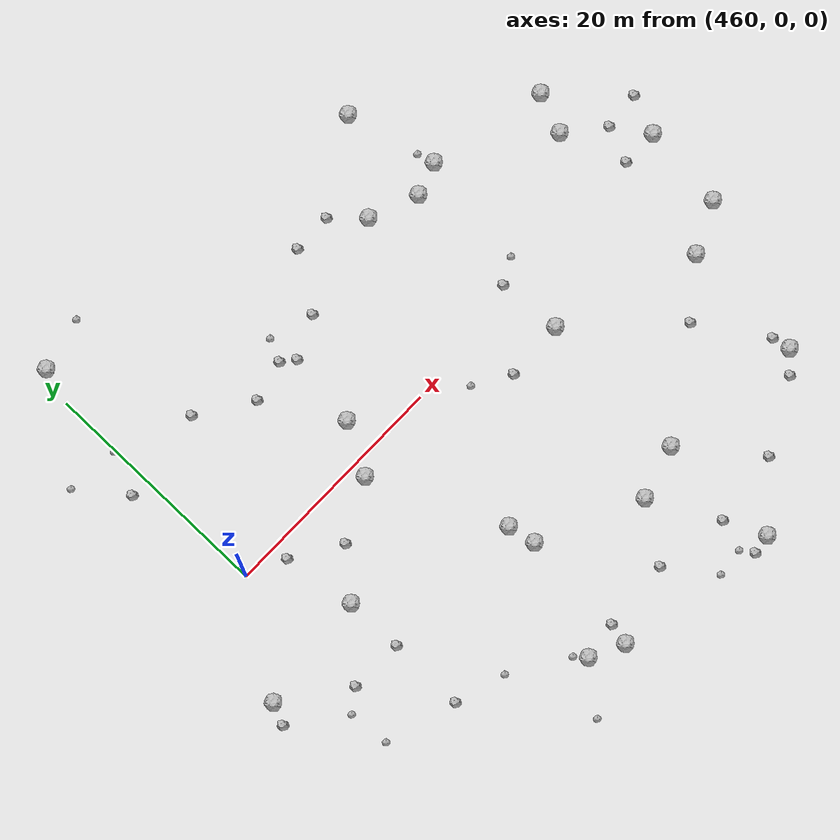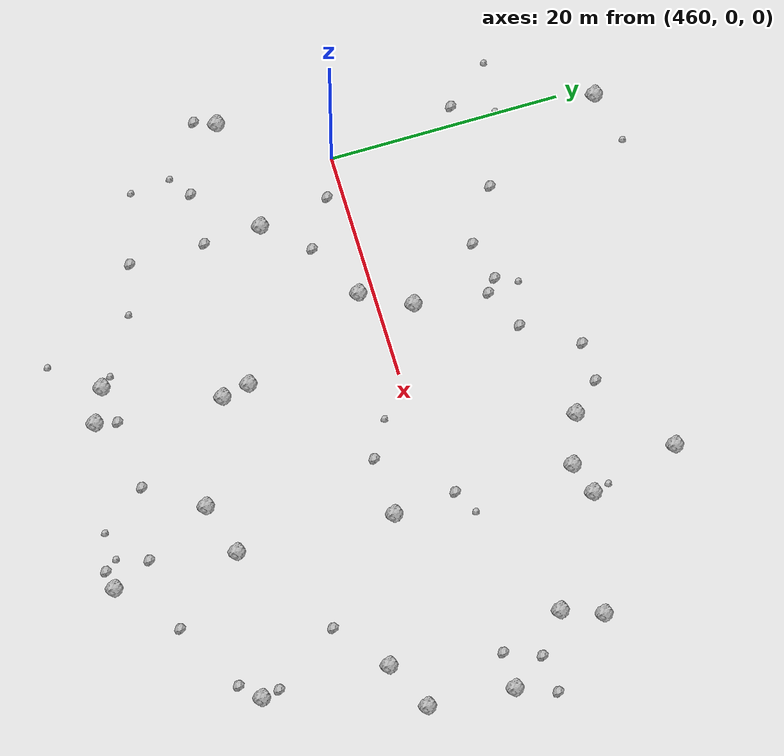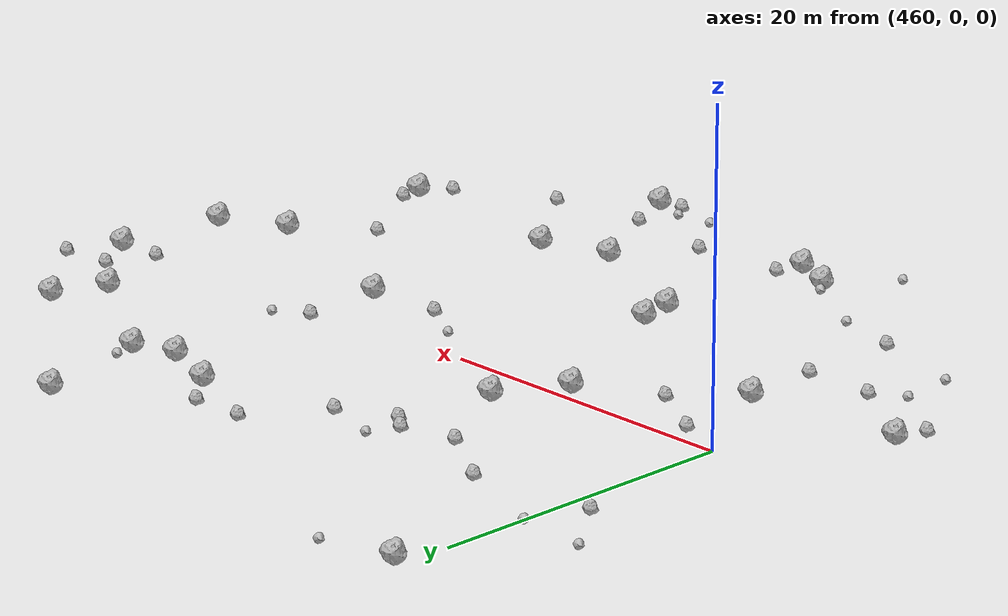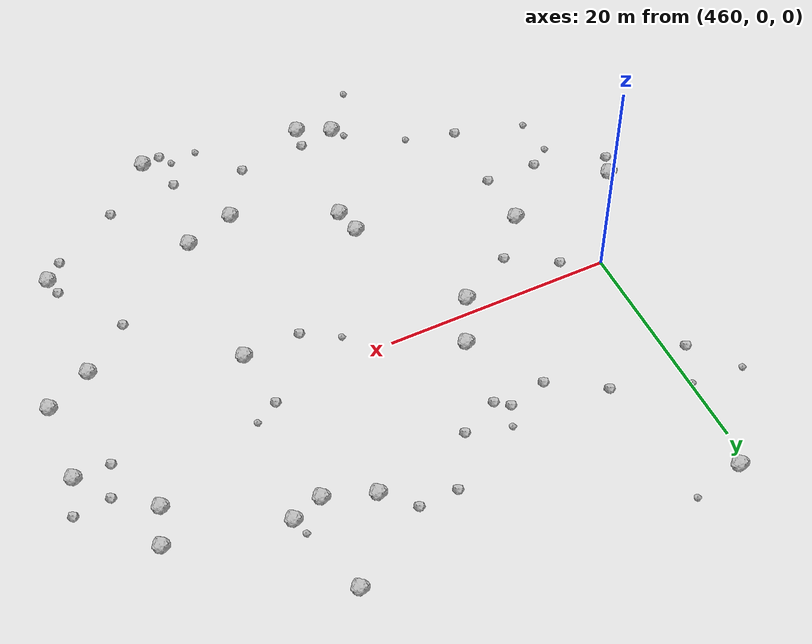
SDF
<sdf version="1.6">
 <world name="default">
  <include><uri>model://sun</uri></include>
  <model name="rock1_12_4">
   <include><uri>model://rock1</uri><pose>507.7874239950006 -5.903077010706621 0.5 0 0 0</pose></include>
  </model>
  <model name="rock1_12_5">
   <include><uri>model://rock1</uri><pose>477.9071087725154 -14.663560024223539 0.5 0 0 0</pose></include>
  </model>
  <model name="rock1_12_6">
   <include><uri>model://rock1</uri><pose>491.0317085481792 -17.161592402101157 0.5 0 0 0</pose></include>
  </model>
  <model name="rock1_12_7">
   <include><uri>model://rock1</uri><pose>477.4290427645817 -12.294676024920207 0.5 0 0 0</pose></include>
  </model>
  <model name="rock1_12_8">
   <include><uri>model://rock1</uri><pose>460.89410931963516 23.068955001823504 0.5 0 0 0</pose></include>
  </model>
  <model name="rock1_12_9">
   <include><uri>model://rock1</uri><pose>503.23459215425873 6.770016181646312 0.5 0 0 0</pose></include>
  </model>
  <model name="rock1_12_10">
   <include><uri>model://rock1</uri><pose>504.49664565966066 10.107047549967298 0.5 0 0 0</pose></include>
  </model>
  <model name="rock1_12_11">
   <include><uri>model://rock1</uri><pose>491.59959128186466 -3.878269564795204 0.5 0 0 0</pose></include>
  </model>
  <model name="rock1_12_12">
   <include><uri>model://rock1</uri><pose>477.1058503934785 -25.42537228999236 0.5 0 0 0</pose></include>
  </model>
  <model name="rock1_12_13">
   <include><uri>model://rock1</uri><pose>474.58332729700805 2.8852975440652813 0.5 0 0 0</pose></include>
  </model>
  <model name="rock1_12_14">
   <include><uri>model://rock1</uri><pose>492.49082792134584 20.06023093389645 0.5 0 0 0</pose></include>
  </model>
  <model name="rock1_12_15">
   <include><uri>model://rock1</uri><pose>503.3358674606709 -18.571438209797527 0.5 0 0 0</pose></include>
  </model>
  <model name="rock1_12_16">
   <include><uri>model://rock1</uri><pose>486.5775076964316 -18.5426609265984 0.5 0 0 0</pose></include>
  </model>
  <model name="rock1_12_17">
   <include><uri>model://rock1</uri><pose>487.5674816481279 13.02296202794922 0.5 0 0 0</pose></include>
  </model>
  <model name="rock1_12_18">
   <include><uri>model://rock1</uri><pose>491.7062605383806 11.443794564093096 0.5 0 0 0</pose></include>
  </model>
  <model name="rock1_12_19">
   <include><uri>model://rock1</uri><pose>464.29682210586213 -7.520216129210205 0.5 0 0 0</pose></include>
  </model>
  <model name="rock1_12_20">
   <include><uri>model://rock1</uri><pose>454.3600403201688 -8.548672836210272 0.5 0 0 0</pose></include>
  </model>
  <model name="rock1_12_21">
   <include><uri>model://rock1</uri><pose>491.17037135195426 -27.614378586742813 0.5 0 0 0</pose></include>
  </model>
  <model name="rock1_12_22">
   <include><uri>model://rock1</uri><pose>503.68410576037786 -7.9270614619181075 0.5 0 0 0</pose></include>
  </model>
  <model name="rock1_12_23">
   <include><uri>model://rock1</uri><pose>472.3623346849866 -1.276624746607034 0.5 0 0 0</pose></include>
  </model>
  <model name="rock1_12_24">
   <include><uri>model://rock1</uri><pose>508.373491864 1.3091200272773058 0.5 0 0 0</pose></include>
  </model>
  <model name="rock1_12_25">
   <include><uri>model://rock1</uri><pose>494.46303913863176 12.36608708626644 0.5 0 0 0</pose></include>
  </model>
  <model name="rock1_12_26">
   <include><uri>model://rock1</uri><pose>474.2679047063618 -24.078636438306987 0.5 0 0 0</pose></include>
  </model>
  <model name="rock2_12_0">
   <include><uri>model://rock2</uri><pose>463.29992699961434 -1.3551816035335413 0.3 0 0 0</pose></include>
  </model>
  <model name="rock2_12_1">
   <include><uri>model://rock2</uri><pose>464.3631457197771 -12.432538088364428 0.3 0 0 0</pose></include>
  </model>
  <model name="rock2_12_2">
   <include><uri>model://rock2</uri><pose>483.4377181155719 -23.159767428173907 0.3 0 0 0</pose></include>
  </model>
  <model name="rock2_12_3">
   <include><uri>model://rock2</uri><pose>466.25199202977836 12.131164833713278 0.3 0 0 0</pose></include>
  </model>
  <model name="rock2_12_4">
   <include><uri>model://rock2</uri><pose>495.8547964993979 -23.345639897963444 0.3 0 0 0</pose></include>
  </model>
  <model name="rock2_12_5">
   <include><uri>model://rock2</uri><pose>501.7510257621331 -20.078811916590965 0.3 0 0 0</pose></include>
  </model>
  <model name="rock2_12_6">
   <include><uri>model://rock2</uri><pose>477.43345998542827 -23.578186017082707 0.3 0 0 0</pose></include>
  </model>
  <model name="rock2_12_7">
   <include><uri>model://rock2</uri><pose>478.80603490714253 10.853255351006808 0.3 0 0 0</pose></include>
  </model>
  <model name="rock2_12_8">
   <include><uri>model://rock2</uri><pose>475.3340384655264 9.199806235740574 0.3 0 0 0</pose></include>
  </model>
  <model name="rock2_12_9">
   <include><uri>model://rock2</uri><pose>505.2005115427204 1.292787189641377 0.3 0 0 0</pose></include>
  </model>
  <model name="rock2_12_10">
   <include><uri>model://rock2</uri><pose>509.5841777263601 4.601695693075811 0.3 0 0 0</pose></include>
  </model>
  <model name="rock2_12_11">
   <include><uri>model://rock2</uri><pose>464.3459879151246 -18.934453528518425 0.3 0 0 0</pose></include>
  </model>
  <model name="rock2_12_12">
   <include><uri>model://rock2</uri><pose>489.5848318555953 -24.214485280552175 0.3 0 0 0</pose></include>
  </model>
  <model name="rock2_12_13">
   <include><uri>model://rock2</uri><pose>481.7880268522332 15.404398403456355 0.3 0 0 0</pose></include>
  </model>
  <model name="rock2_12_14">
   <include><uri>model://rock2</uri><pose>506.3556128601335 4.272745160561243 0.3 0 0 0</pose></include>
  </model>
  <model name="rock2_12_15">
   <include><uri>model://rock2</uri><pose>467.3896303918727 -3.8646216532334634 0.3 0 0 0</pose></include>
  </model>
  <model name="rock2_12_16">
   <include><uri>model://rock2</uri><pose>486.5102112179094 -4.092630827169444 0.3 0 0 0</pose></include>
  </model>
  <model name="rock2_12_17">
   <include><uri>model://rock2</uri><pose>474.22189906819455 10.092534940920281 0.3 0 0 0</pose></include>
  </model>
  <model name="rock2_12_18">
   <include><uri>model://rock2</uri><pose>502.9980510986394 -17.01103999625181 0.3 0 0 0</pose></include>
  </model>
  <model name="rock2_12_19">
   <include><uri>model://rock2</uri><pose>453.55564513643964 -10.342474588241686 0.3 0 0 0</pose></include>
  </model>
  <model name="rock2_12_20">
   <include><uri>model://rock2</uri><pose>458.376683566383 11.057006740315032 0.3 0 0 0</pose></include>
  </model>
  <model name="rock2_12_21">
   <include><uri>model://rock2</uri><pose>459.7739727128304 -12.341099146697239 0.3 0 0 0</pose></include>
  </model>
  <model name="rock2_12_22">
   <include><uri>model://rock2</uri><pose>485.20422921854623 15.47832491142671 0.3 0 0 0</pose></include>
  </model>
  <model name="rock2_12_23">
   <include><uri>model://rock2</uri><pose>491.13120301339 1.493768752370805 0.3 0 0 0</pose></include>
  </model>
  <model name="rock2_12_24">
   <include><uri>model://rock2</uri><pose>489.4865404610497 -27.875029518713752 0.3 0 0 0</pose></include>
  </model>
  <model name="rock2_12_25">
   <include><uri>model://rock2</uri><pose>470.7646620316314 9.212163829068253 0.3 0 0 0</pose></include>
  </model>
  <model name="rock2_12_26">
   <include><uri>model://rock2</uri><pose>499.3215118230642 -11.402607055005369 0.3 0 0 0</pose></include>
  </model>
  <model name="rock3_12_0">
   <include><uri>model://rock3</uri><pose>471.19383241725143 -27.963249749503184 0.2 0 0 0</pose></include>
  </model>
  <model name="rock3_12_1">
   <include><uri>model://rock3</uri><pose>475.03779180640197 11.905852713708185 0.2 0 0 0</pose></include>
  </model>
  <model name="rock3_12_2">
   <include><uri>model://rock3</uri><pose>483.4313129421987 -2.311978575469304 0.2 0 0 0</pose></include>
  </model>
  <model name="rock3_12_3">
   <include><uri>model://rock3</uri><pose>488.7223217546366 -26.84346816192091 0.2 0 0 0</pose></include>
  </model>
  <model name="rock3_12_4">
   <include><uri>model://rock3</uri><pose>459.854978426577 14.510647729506552 0.2 0 0 0</pose></include>
  </model>
  <model name="rock3_12_5">
   <include><uri>model://rock3</uri><pose>457.9361650160669 -13.70617569118188 0.2 0 0 0</pose></include>
  </model>
  <model name="rock3_12_6">
   <include><uri>model://rock3</uri><pose>458.2407698857963 -17.195117520806093 0.2 0 0 0</pose></include>
  </model>
  <model name="rock3_12_7">
   <include><uri>model://rock3</uri><pose>468.6425302911178 -20.244307597067912 0.2 0 0 0</pose></include>
  </model>
  <model name="rock3_12_8">
   <include><uri>model://rock3</uri><pose>493.9999138051046 13.796460199904288 0.2 0 0 0</pose></include>
  </model>
  <model name="rock3_12_9">
   <include><uri>model://rock3</uri><pose>465.3762014131939 24.158062195722778 0.2 0 0 0</pose></include>
  </model>
  <model name="rock3_12_10">
   <include><uri>model://rock3</uri><pose>455.3228511800171 14.905141381734694 0.2 0 0 0</pose></include>
  </model>
  <model name="rock3_12_11">
   <include><uri>model://rock3</uri><pose>486.3076234902849 -27.12169396209101 0.2 0 0 0</pose></include>
  </model>
  <model name="rock3_12_12">
   <include><uri>model://rock3</uri><pose>493.1975880559288 2.620658714596736 0.2 0 0 0</pose></include>
  </model>
  <model name="rock3_12_13">
   <include><uri>model://rock3</uri><pose>473.4162762957422 -23.16099729288789 0.2 0 0 0</pose></include>
  </model>
 </world>
</sdf>
